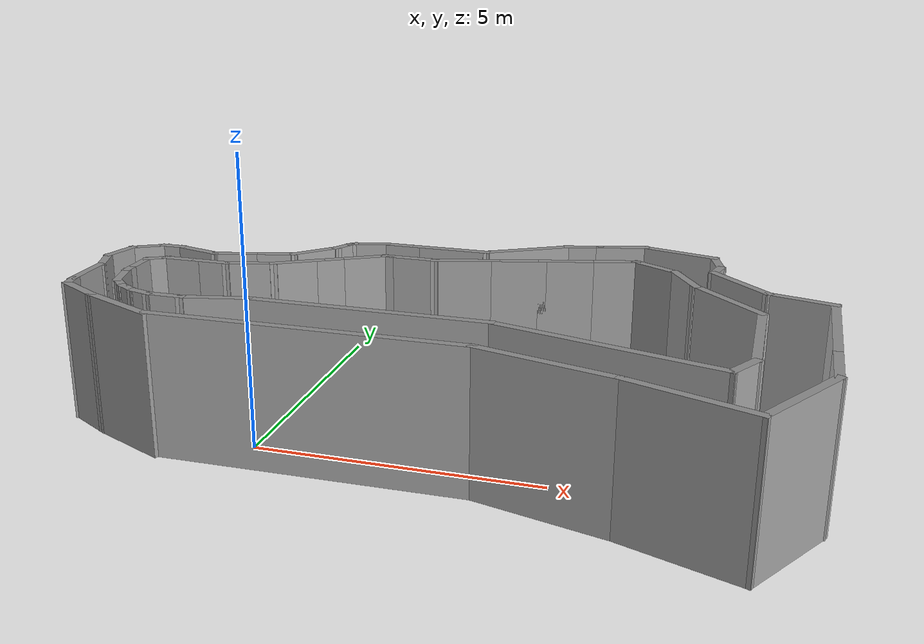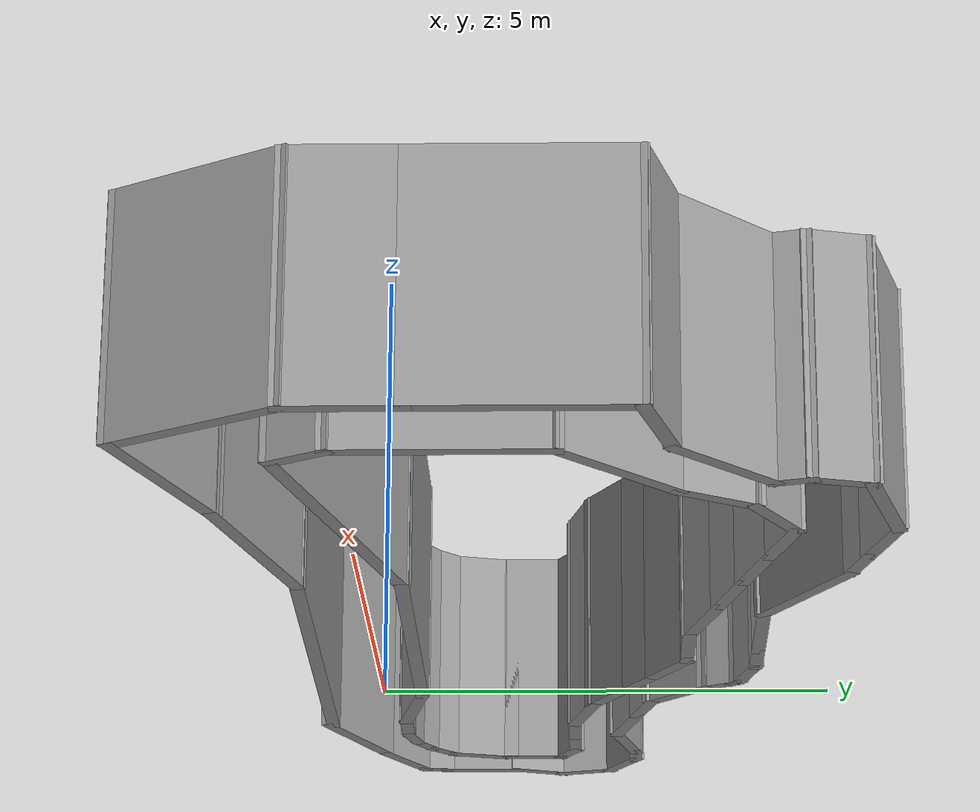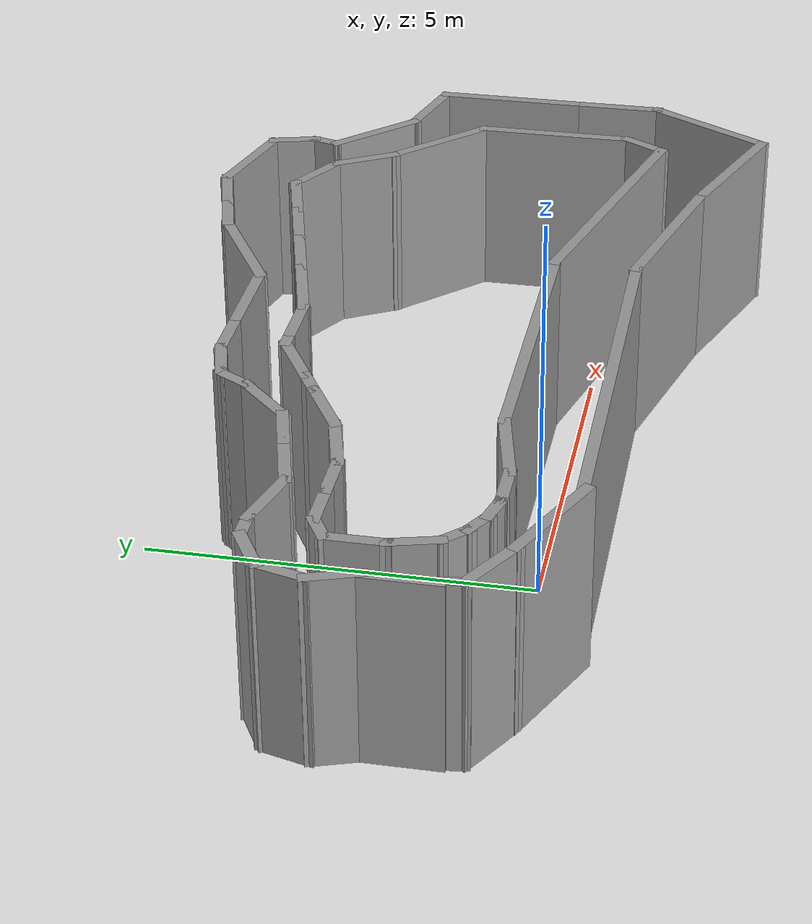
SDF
<?xml version='1.0'?>
<sdf version='1.7'>
  <model name='track_ver3'>
    <pose>2.6763 1.66621 0 0 -0 0</pose>
    <link name='Wall_10'>
      <collision name='Wall_10_Collision'>
        <geometry>
          <box>
            <size>2.25 0.15 2.5</size>
          </box>
        </geometry>
        <pose>0 0 1.25 0 -0 0</pose>
      </collision>
      <visual name='Wall_10_Visual'>
        <pose>0 0 1.25 0 -0 0</pose>
        <geometry>
          <box>
            <size>2.25 0.15 2.5</size>
          </box>
        </geometry>
        <material>
          <script>
            <uri>file://media/materials/scripts/gazebo.material</uri>
            <name>Gazebo/Grey</name>
          </script>
          <ambient>1 1 1 1</ambient>
        </material>
        <meta>
          <layer>0</layer>
        </meta>
      </visual>
      <pose>6.39373 0.103206 0 0 -0 1.5708</pose>
    </link>
    <link name='Wall_11'>
      <collision name='Wall_11_Collision'>
        <geometry>
          <box>
            <size>1.25 0.15 2.5</size>
          </box>
        </geometry>
        <pose>0 0 1.25 0 -0 0</pose>
      </collision>
      <visual name='Wall_11_Visual'>
        <pose>0 0 1.25 0 -0 0</pose>
        <geometry>
          <box>
            <size>1.25 0.15 2.5</size>
          </box>
        </geometry>
        <material>
          <script>
            <uri>file://media/materials/scripts/gazebo.material</uri>
            <name>Gazebo/Grey</name>
          </script>
          <ambient>1 1 1 1</ambient>
        </material>
        <meta>
          <layer>0</layer>
        </meta>
      </visual>
      <pose>5.86247 1.29556 0 0 -0 2.87979</pose>
    </link>
    <link name='Wall_12'>
      <collision name='Wall_12_Collision'>
        <geometry>
          <box>
            <size>1.5 0.15 2.5</size>
          </box>
        </geometry>
        <pose>0 0 1.25 0 -0 0</pose>
      </collision>
      <visual name='Wall_12_Visual'>
        <pose>0 0 1.25 0 -0 0</pose>
        <geometry>
          <box>
            <size>1.5 0.15 2.5</size>
          </box>
        </geometry>
        <material>
          <script>
            <uri>file://media/materials/scripts/gazebo.material</uri>
            <name>Gazebo/Grey</name>
          </script>
          <ambient>1 1 1 1</ambient>
        </material>
        <meta>
          <layer>0</layer>
        </meta>
      </visual>
      <pose>4.85392 1.9152 0 0 -0 2.35619</pose>
    </link>
    <link name='Wall_13'>
      <collision name='Wall_13_Collision'>
        <geometry>
          <box>
            <size>0.5 0.15 2.5</size>
          </box>
        </geometry>
        <pose>0 0 1.25 0 -0 0</pose>
      </collision>
      <visual name='Wall_13_Visual'>
        <pose>0 0 1.25 0 -0 0</pose>
        <geometry>
          <box>
            <size>0.5 0.15 2.5</size>
          </box>
        </geometry>
        <material>
          <script>
            <uri>file://media/materials/scripts/gazebo.material</uri>
            <name>Gazebo/Grey</name>
          </script>
          <ambient>1 1 1 1</ambient>
        </material>
        <meta>
          <layer>0</layer>
        </meta>
      </visual>
      <pose>4.42191 2.56154 0 0 -0 1.309</pose>
    </link>
    <link name='Wall_14'>
      <collision name='Wall_14_Collision'>
        <geometry>
          <box>
            <size>0.75 0.15 2.5</size>
          </box>
        </geometry>
        <pose>0 0 1.25 0 -0 0</pose>
      </collision>
      <visual name='Wall_14_Visual'>
        <pose>0 0 1.25 0 -0 0</pose>
        <geometry>
          <box>
            <size>0.75 0.15 2.5</size>
          </box>
        </geometry>
        <material>
          <script>
            <uri>file://media/materials/scripts/gazebo.material</uri>
            <name>Gazebo/Grey</name>
          </script>
          <ambient>1 1 1 1</ambient>
        </material>
        <meta>
          <layer>0</layer>
        </meta>
      </visual>
      <pose>4.38956 3.02035 0 0 -0 1.8326</pose>
    </link>
    <link name='Wall_15'>
      <collision name='Wall_15_Collision'>
        <geometry>
          <box>
            <size>1.5 0.15 2.5</size>
          </box>
        </geometry>
        <pose>0 0 1.25 0 -0 0</pose>
      </collision>
      <visual name='Wall_15_Visual'>
        <pose>0 0 1.25 0 -0 0</pose>
        <geometry>
          <box>
            <size>1.5 0.15 2.5</size>
          </box>
        </geometry>
        <material>
          <script>
            <uri>file://media/materials/scripts/gazebo.material</uri>
            <name>Gazebo/Grey</name>
          </script>
          <ambient>1 1 1 1</ambient>
        </material>
        <meta>
          <layer>0</layer>
        </meta>
      </visual>
      <pose>3.65991 3.48483 0 0 -0 2.87979</pose>
    </link>
    <link name='Wall_16'>
      <collision name='Wall_16_Collision'>
        <geometry>
          <box>
            <size>1 0.15 2.5</size>
          </box>
        </geometry>
        <pose>0 0 1.25 0 -0 0</pose>
      </collision>
      <visual name='Wall_16_Visual'>
        <pose>0 0 1.25 0 -0 0</pose>
        <geometry>
          <box>
            <size>1 0.15 2.5</size>
          </box>
        </geometry>
        <material>
          <script>
            <uri>file://media/materials/scripts/gazebo.material</uri>
            <name>Gazebo/Grey</name>
          </script>
          <ambient>1 1 1 1</ambient>
        </material>
        <meta>
          <layer>0</layer>
        </meta>
      </visual>
      <pose>2.5974 3.54954 0 0 -0 -2.87979</pose>
    </link>
    <link name='Wall_17'>
      <collision name='Wall_17_Collision'>
        <geometry>
          <box>
            <size>0.75 0.15 2.5</size>
          </box>
        </geometry>
        <pose>0 0 1.25 0 -0 0</pose>
      </collision>
      <visual name='Wall_17_Visual'>
        <pose>0 0 1.25 0 -0 0</pose>
        <geometry>
          <box>
            <size>0.75 0.15 2.5</size>
          </box>
        </geometry>
        <material>
          <script>
            <uri>file://media/materials/scripts/gazebo.material</uri>
            <name>Gazebo/Grey</name>
          </script>
          <ambient>1 1 1 1</ambient>
        </material>
        <meta>
          <layer>0</layer>
        </meta>
      </visual>
      <pose>1.8971 3.3619 0 0 -0 -2.87979</pose>
    </link>
    <link name='Wall_18'>
      <collision name='Wall_18_Collision'>
        <geometry>
          <box>
            <size>1.75 0.15 2.5</size>
          </box>
        </geometry>
        <pose>0 0 1.25 0 -0 0</pose>
      </collision>
      <visual name='Wall_18_Visual'>
        <pose>0 0 1.25 0 -0 0</pose>
        <geometry>
          <box>
            <size>1.75 0.15 2.5</size>
          </box>
        </geometry>
        <material>
          <script>
            <uri>file://media/materials/scripts/gazebo.material</uri>
            <name>Gazebo/Grey</name>
          </script>
          <ambient>1 1 1 1</ambient>
        </material>
        <meta>
          <layer>0</layer>
        </meta>
      </visual>
      <pose>0.914502 2.88425 0 0 -0 -2.61799</pose>
    </link>
    <link name='Wall_19'>
      <collision name='Wall_19_Collision'>
        <geometry>
          <box>
            <size>1.5 0.15 2.5</size>
          </box>
        </geometry>
        <pose>0 0 1.25 0 -0 0</pose>
      </collision>
      <visual name='Wall_19_Visual'>
        <pose>0 0 1.25 0 -0 0</pose>
        <geometry>
          <box>
            <size>1.5 0.15 2.5</size>
          </box>
        </geometry>
        <material>
          <script>
            <uri>file://media/materials/scripts/gazebo.material</uri>
            <name>Gazebo/Grey</name>
          </script>
          <ambient>1 1 1 1</ambient>
        </material>
        <meta>
          <layer>0</layer>
        </meta>
      </visual>
      <pose>-0.453318 2.48425 0 0 -0 3.14159</pose>
    </link>
    <link name='Wall_20'>
      <collision name='Wall_20_Collision'>
        <geometry>
          <box>
            <size>0.75 0.15 2.5</size>
          </box>
        </geometry>
        <pose>0 0 1.25 0 -0 0</pose>
      </collision>
      <visual name='Wall_20_Visual'>
        <pose>0 0 1.25 0 -0 0</pose>
        <geometry>
          <box>
            <size>0.75 0.15 2.5</size>
          </box>
        </geometry>
        <material>
          <script>
            <uri>file://media/materials/scripts/gazebo.material</uri>
            <name>Gazebo/Grey</name>
          </script>
          <ambient>1 1 1 1</ambient>
        </material>
        <meta>
          <layer>0</layer>
        </meta>
      </visual>
      <pose>-1.42832 2.48425 0 0 -0 3.14159</pose>
    </link>
    <link name='Wall_21'>
      <collision name='Wall_21_Collision'>
        <geometry>
          <box>
            <size>0.75 0.15 2.5</size>
          </box>
        </geometry>
        <pose>0 0 1.25 0 -0 0</pose>
      </collision>
      <visual name='Wall_21_Visual'>
        <pose>0 0 1.25 0 -0 0</pose>
        <geometry>
          <box>
            <size>0.75 0.15 2.5</size>
          </box>
        </geometry>
        <material>
          <script>
            <uri>file://media/materials/scripts/gazebo.material</uri>
            <name>Gazebo/Grey</name>
          </script>
          <ambient>1 1 1 1</ambient>
        </material>
        <meta>
          <layer>0</layer>
        </meta>
      </visual>
      <pose>-2.0181 2.4066 0 0 -0 -2.87979</pose>
    </link>
    <link name='Wall_22'>
      <collision name='Wall_22_Collision'>
        <geometry>
          <box>
            <size>0.25 0.15 2.5</size>
          </box>
        </geometry>
        <pose>0 0 1.25 0 -0 0</pose>
      </collision>
      <visual name='Wall_22_Visual'>
        <pose>0 0 1.25 0 -0 0</pose>
        <geometry>
          <box>
            <size>0.25 0.15 2.5</size>
          </box>
        </geometry>
        <material>
          <script>
            <uri>file://media/materials/scripts/gazebo.material</uri>
            <name>Gazebo/Grey</name>
          </script>
          <ambient>1 1 1 1</ambient>
        </material>
        <meta>
          <layer>0</layer>
        </meta>
      </visual>
      <pose>-2.34323 2.2936 0 0 -0 -2.35619</pose>
    </link>
    <link name='Wall_23'>
      <collision name='Wall_23_Collision'>
        <geometry>
          <box>
            <size>0.5 0.15 2.5</size>
          </box>
        </geometry>
        <pose>0 0 1.25 0 -0 0</pose>
      </collision>
      <visual name='Wall_23_Visual'>
        <pose>0 0 1.25 0 -0 0</pose>
        <geometry>
          <box>
            <size>0.5 0.15 2.5</size>
          </box>
        </geometry>
        <material>
          <script>
            <uri>file://media/materials/scripts/gazebo.material</uri>
            <name>Gazebo/Grey</name>
          </script>
          <ambient>1 1 1 1</ambient>
        </material>
        <meta>
          <layer>0</layer>
        </meta>
      </visual>
      <pose>-2.46608 2.10669 0 0 -0 -2.0944</pose>
    </link>
    <link name='Wall_24'>
      <collision name='Wall_24_Collision'>
        <geometry>
          <box>
            <size>1 0.15 2.5</size>
          </box>
        </geometry>
        <pose>0 0 1.25 0 -0 0</pose>
      </collision>
      <visual name='Wall_24_Visual'>
        <pose>0 0 1.25 0 -0 0</pose>
        <geometry>
          <box>
            <size>1 0.15 2.5</size>
          </box>
        </geometry>
        <material>
          <script>
            <uri>file://media/materials/scripts/gazebo.material</uri>
            <name>Gazebo/Grey</name>
          </script>
          <ambient>1 1 1 1</ambient>
        </material>
        <meta>
          <layer>0</layer>
        </meta>
      </visual>
      <pose>-2.85411 1.65462 0 0 -0 -2.35619</pose>
    </link>
    <link name='Wall_25'>
      <collision name='Wall_25_Collision'>
        <geometry>
          <box>
            <size>0.75 0.15 2.5</size>
          </box>
        </geometry>
        <pose>0 0 1.25 0 -0 0</pose>
      </collision>
      <visual name='Wall_25_Visual'>
        <pose>0 0 1.25 0 -0 0</pose>
        <geometry>
          <box>
            <size>0.75 0.15 2.5</size>
          </box>
        </geometry>
        <material>
          <script>
            <uri>file://media/materials/scripts/gazebo.material</uri>
            <name>Gazebo/Grey</name>
          </script>
          <ambient>1 1 1 1</ambient>
        </material>
        <meta>
          <layer>0</layer>
        </meta>
      </visual>
      <pose>-3.4444 1.27645 0 0 -0 -2.87979</pose>
    </link>
    <link name='Wall_26'>
      <collision name='Wall_26_Collision'>
        <geometry>
          <box>
            <size>1 0.15 2.5</size>
          </box>
        </geometry>
        <pose>0 0 1.25 0 -0 0</pose>
      </collision>
      <visual name='Wall_26_Visual'>
        <pose>0 0 1.25 0 -0 0</pose>
        <geometry>
          <box>
            <size>1 0.15 2.5</size>
          </box>
        </geometry>
        <material>
          <script>
            <uri>file://media/materials/scripts/gazebo.material</uri>
            <name>Gazebo/Grey</name>
          </script>
          <ambient>1 1 1 1</ambient>
        </material>
        <meta>
          <layer>0</layer>
        </meta>
      </visual>
      <pose>-4.1447 1.08881 0 0 -0 -2.87979</pose>
    </link>
    <link name='Wall_27'>
      <collision name='Wall_27_Collision'>
        <geometry>
          <box>
            <size>1 0.15 2.5</size>
          </box>
        </geometry>
        <pose>0 0 1.25 0 -0 0</pose>
      </collision>
      <visual name='Wall_27_Visual'>
        <pose>0 0 1.25 0 -0 0</pose>
        <geometry>
          <box>
            <size>1 0.15 2.5</size>
          </box>
        </geometry>
        <material>
          <script>
            <uri>file://media/materials/scripts/gazebo.material</uri>
            <name>Gazebo/Grey</name>
          </script>
          <ambient>1 1 1 1</ambient>
        </material>
        <meta>
          <layer>0</layer>
        </meta>
      </visual>
      <pose>-4.96574 1.08881 0 0 -0 2.87979</pose>
    </link>
    <link name='Wall_28'>
      <collision name='Wall_28_Collision'>
        <geometry>
          <box>
            <size>0.5 0.15 2.5</size>
          </box>
        </geometry>
        <pose>0 0 1.25 0 -0 0</pose>
      </collision>
      <visual name='Wall_28_Visual'>
        <pose>0 0 1.25 0 -0 0</pose>
        <geometry>
          <box>
            <size>0.5 0.15 2.5</size>
          </box>
        </geometry>
        <material>
          <script>
            <uri>file://media/materials/scripts/gazebo.material</uri>
            <name>Gazebo/Grey</name>
          </script>
          <ambient>1 1 1 1</ambient>
        </material>
        <meta>
          <layer>0</layer>
        </meta>
      </visual>
      <pose>-5.55125 1.19881 0 0 -0 3.14159</pose>
    </link>
    <link name='Wall_29'>
      <collision name='Wall_29_Collision'>
        <geometry>
          <box>
            <size>0.75 0.15 2.5</size>
          </box>
        </geometry>
        <pose>0 0 1.25 0 -0 0</pose>
      </collision>
      <visual name='Wall_29_Visual'>
        <pose>0 0 1.25 0 -0 0</pose>
        <geometry>
          <box>
            <size>0.75 0.15 2.5</size>
          </box>
        </geometry>
        <material>
          <script>
            <uri>file://media/materials/scripts/gazebo.material</uri>
            <name>Gazebo/Grey</name>
          </script>
          <ambient>1 1 1 1</ambient>
        </material>
        <meta>
          <layer>0</layer>
        </meta>
      </visual>
      <pose>-5.98606 1.04881 0 0 -0 -2.61799</pose>
    </link>
    <link name='Wall_3'>
      <collision name='Wall_3_Collision'>
        <geometry>
          <box>
            <size>1 0.15 2.5</size>
          </box>
        </geometry>
        <pose>0 0 1.25 0 -0 0</pose>
      </collision>
      <visual name='Wall_3_Visual'>
        <pose>0 0 1.25 0 -0 0</pose>
        <geometry>
          <box>
            <size>1 0.15 2.5</size>
          </box>
        </geometry>
        <material>
          <script>
            <uri>file://media/materials/scripts/gazebo.material</uri>
            <name>Gazebo/Grey</name>
          </script>
          <ambient>1 1 1 1</ambient>
        </material>
        <meta>
          <layer>0</layer>
        </meta>
      </visual>
      <pose>-5.79917 -1.58482 0 0 -0 -0.523599</pose>
    </link>
    <link name='Wall_30'>
      <collision name='Wall_30_Collision'>
        <geometry>
          <box>
            <size>0.75 0.15 2.5</size>
          </box>
        </geometry>
        <pose>0 0 1.25 0 -0 0</pose>
      </collision>
      <visual name='Wall_30_Visual'>
        <pose>0 0 1.25 0 -0 0</pose>
        <geometry>
          <box>
            <size>0.75 0.15 2.5</size>
          </box>
        </geometry>
        <material>
          <script>
            <uri>file://media/materials/scripts/gazebo.material</uri>
            <name>Gazebo/Grey</name>
          </script>
          <ambient>1 1 1 1</ambient>
        </material>
        <meta>
          <layer>0</layer>
        </meta>
      </visual>
      <pose>-6.32352 0.609028 0 0 -0 -1.8326</pose>
    </link>
    <link name='Wall_31'>
      <collision name='Wall_31_Collision'>
        <geometry>
          <box>
            <size>0.761574 0.15 2.5</size>
          </box>
        </geometry>
        <pose>0 0 1.25 0 -0 0</pose>
      </collision>
      <visual name='Wall_31_Visual'>
        <pose>0 0 1.25 0 -0 0</pose>
        <geometry>
          <box>
            <size>0.761574 0.15 2.5</size>
          </box>
        </geometry>
        <material>
          <script>
            <uri>file://media/materials/scripts/gazebo.material</uri>
            <name>Gazebo/Grey</name>
          </script>
          <ambient>1 1 1 1</ambient>
        </material>
        <meta>
          <layer>0</layer>
        </meta>
      </visual>
      <pose>-6.30351 0.029473 0 0 -0 -1.24578</pose>
    </link>
    <link name='Wall_32'>
      <collision name='Wall_32_Collision'>
        <geometry>
          <box>
            <size>1 0.15 2.5</size>
          </box>
        </geometry>
        <pose>0 0 1.25 0 -0 0</pose>
      </collision>
      <visual name='Wall_32_Visual'>
        <pose>0 0 1.25 0 -0 0</pose>
        <geometry>
          <box>
            <size>1 0.15 2.5</size>
          </box>
        </geometry>
        <material>
          <script>
            <uri>file://media/materials/scripts/gazebo.material</uri>
            <name>Gazebo/Grey</name>
          </script>
          <ambient>1 1 1 1</ambient>
        </material>
        <meta>
          <layer>0</layer>
        </meta>
      </visual>
      <pose>-6.22587 -0.685305 0 0 -0 -1.5708</pose>
    </link>
    <link name='Wall_33'>
      <collision name='Wall_33_Collision'>
        <geometry>
          <box>
            <size>0.414849 0.15 2.5</size>
          </box>
        </geometry>
        <pose>0 0 1.25 0 -0 0</pose>
      </collision>
      <visual name='Wall_33_Visual'>
        <pose>0 0 1.25 0 -0 0</pose>
        <geometry>
          <box>
            <size>0.414849 0.15 2.5</size>
          </box>
        </geometry>
        <material>
          <script>
            <uri>file://media/materials/scripts/gazebo.material</uri>
            <name>Gazebo/Grey</name>
          </script>
          <ambient>1 1 1 1</ambient>
        </material>
        <meta>
          <layer>0</layer>
        </meta>
      </visual>
      <pose>-6.18655 -1.24131 0 0 -0 -1.42438</pose>
    </link>
    <link name='Wall_37'>
      <collision name='Wall_37_Collision'>
        <geometry>
          <box>
            <size>4.25 0.15 2.5</size>
          </box>
        </geometry>
        <pose>0 0 1.25 0 -0 0</pose>
      </collision>
      <visual name='Wall_37_Visual'>
        <pose>0 0 1.25 0 -0 0</pose>
        <geometry>
          <box>
            <size>4.25 0.15 2.5</size>
          </box>
        </geometry>
        <material>
          <script>
            <uri>file://media/materials/scripts/gazebo.material</uri>
            <name>Gazebo/Grey</name>
          </script>
          <ambient>1 1 1 1</ambient>
        </material>
        <meta>
          <layer>0</layer>
        </meta>
      </visual>
      <pose>-0.79223 -1.24953 0 0 -0 0</pose>
    </link>
    <link name='Wall_38'>
      <collision name='Wall_38_Collision'>
        <geometry>
          <box>
            <size>4 0.15 2.5</size>
          </box>
        </geometry>
        <pose>0 0 1.25 0 -0 0</pose>
      </collision>
      <visual name='Wall_38_Visual'>
        <pose>0 0 1.25 0 -0 0</pose>
        <geometry>
          <box>
            <size>4 0.15 2.5</size>
          </box>
        </geometry>
        <material>
          <script>
            <uri>file://media/materials/scripts/gazebo.material</uri>
            <name>Gazebo/Grey</name>
          </script>
          <ambient>1 1 1 1</ambient>
        </material>
        <meta>
          <layer>0</layer>
        </meta>
      </visual>
      <pose>3.11718 -1.74776 0 0 -0 -0.261799</pose>
    </link>
    <link name='Wall_39'>
      <collision name='Wall_39_Collision'>
        <geometry>
          <box>
            <size>0.75 0.15 2.5</size>
          </box>
        </geometry>
        <pose>0 0 1.25 0 -0 0</pose>
      </collision>
      <visual name='Wall_39_Visual'>
        <pose>0 0 1.25 0 -0 0</pose>
        <geometry>
          <box>
            <size>0.75 0.15 2.5</size>
          </box>
        </geometry>
        <material>
          <script>
            <uri>file://media/materials/scripts/gazebo.material</uri>
            <name>Gazebo/Grey</name>
          </script>
          <ambient>1 1 1 1</ambient>
        </material>
        <meta>
          <layer>0</layer>
        </meta>
      </visual>
      <pose>5.12658 -1.98618 0 0 -0 1.0472</pose>
    </link>
    <link name='Wall_4'>
      <collision name='Wall_4_Collision'>
        <geometry>
          <box>
            <size>1.60005 0.15 2.5</size>
          </box>
        </geometry>
        <pose>0 0 1.25 0 -0 0</pose>
      </collision>
      <visual name='Wall_4_Visual'>
        <pose>0 0 1.25 0 -0 0</pose>
        <geometry>
          <box>
            <size>1.60005 0.15 2.5</size>
          </box>
        </geometry>
        <material>
          <script>
            <uri>file://media/materials/scripts/gazebo.material</uri>
            <name>Gazebo/Grey</name>
          </script>
          <ambient>1 1 1 1</ambient>
        </material>
        <meta>
          <layer>0</layer>
        </meta>
      </visual>
      <pose>-4.7713 -2.09784 0 0 -0 -0.427394</pose>
    </link>
    <link name='Wall_40'>
      <collision name='Wall_40_Collision'>
        <geometry>
          <box>
            <size>2.25 0.15 2.5</size>
          </box>
        </geometry>
        <pose>0 0 1.25 0 -0 0</pose>
      </collision>
      <visual name='Wall_40_Visual'>
        <pose>0 0 1.25 0 -0 0</pose>
        <geometry>
          <box>
            <size>2.25 0.15 2.5</size>
          </box>
        </geometry>
        <material>
          <script>
            <uri>file://media/materials/scripts/gazebo.material</uri>
            <name>Gazebo/Grey</name>
          </script>
          <ambient>1 1 1 1</ambient>
        </material>
        <meta>
          <layer>0</layer>
        </meta>
      </visual>
      <pose>5.27658 -0.676369 0 0 -0 1.5708</pose>
    </link>
    <link name='Wall_41'>
      <collision name='Wall_41_Collision'>
        <geometry>
          <box>
            <size>1.75 0.15 2.5</size>
          </box>
        </geometry>
        <pose>0 0 1.25 0 -0 0</pose>
      </collision>
      <visual name='Wall_41_Visual'>
        <pose>0 0 1.25 0 -0 0</pose>
        <geometry>
          <box>
            <size>1.75 0.15 2.5</size>
          </box>
        </geometry>
        <material>
          <script>
            <uri>file://media/materials/scripts/gazebo.material</uri>
            <name>Gazebo/Grey</name>
          </script>
          <ambient>1 1 1 1</ambient>
        </material>
        <meta>
          <layer>0</layer>
        </meta>
      </visual>
      <pose>4.7109 0.939316 0 0 -0 2.35619</pose>
    </link>
    <link name='Wall_42'>
      <collision name='Wall_42_Collision'>
        <geometry>
          <box>
            <size>1 0.15 2.5</size>
          </box>
        </geometry>
        <pose>0 0 1.25 0 -0 0</pose>
      </collision>
      <visual name='Wall_42_Visual'>
        <pose>0 0 1.25 0 -0 0</pose>
        <geometry>
          <box>
            <size>1 0.15 2.5</size>
          </box>
        </geometry>
        <material>
          <script>
            <uri>file://media/materials/scripts/gazebo.material</uri>
            <name>Gazebo/Grey</name>
          </script>
          <ambient>1 1 1 1</ambient>
        </material>
        <meta>
          <layer>0</layer>
        </meta>
      </visual>
      <pose>3.93271 1.87306 0 0 -0 2.0944</pose>
    </link>
    <link name='Wall_43'>
      <collision name='Wall_43_Collision'>
        <geometry>
          <box>
            <size>1 0.15 2.5</size>
          </box>
        </geometry>
        <pose>0 0 1.25 0 -0 0</pose>
      </collision>
      <visual name='Wall_43_Visual'>
        <pose>0 0 1.25 0 -0 0</pose>
        <geometry>
          <box>
            <size>1 0.15 2.5</size>
          </box>
        </geometry>
        <material>
          <script>
            <uri>file://media/materials/scripts/gazebo.material</uri>
            <name>Gazebo/Grey</name>
          </script>
          <ambient>1 1 1 1</ambient>
        </material>
        <meta>
          <layer>0</layer>
        </meta>
      </visual>
      <pose>3.35215 2.45362 0 0 -0 2.61799</pose>
    </link>
    <link name='Wall_44'>
      <collision name='Wall_44_Collision'>
        <geometry>
          <box>
            <size>1 0.15 2.5</size>
          </box>
        </geometry>
        <pose>0 0 1.25 0 -0 0</pose>
      </collision>
      <visual name='Wall_44_Visual'>
        <pose>0 0 1.25 0 -0 0</pose>
        <geometry>
          <box>
            <size>1 0.15 2.5</size>
          </box>
        </geometry>
        <material>
          <script>
            <uri>file://media/materials/scripts/gazebo.material</uri>
            <name>Gazebo/Grey</name>
          </script>
          <ambient>1 1 1 1</ambient>
        </material>
        <meta>
          <layer>0</layer>
        </meta>
      </visual>
      <pose>2.57357 2.55613 0 0 -0 -2.87979</pose>
    </link>
    <link name='Wall_45'>
      <collision name='Wall_45_Collision'>
        <geometry>
          <box>
            <size>1 0.15 2.5</size>
          </box>
        </geometry>
        <pose>0 0 1.25 0 -0 0</pose>
      </collision>
      <visual name='Wall_45_Visual'>
        <pose>0 0 1.25 0 -0 0</pose>
        <geometry>
          <box>
            <size>1 0.15 2.5</size>
          </box>
        </geometry>
        <material>
          <script>
            <uri>file://media/materials/scripts/gazebo.material</uri>
            <name>Gazebo/Grey</name>
          </script>
          <ambient>1 1 1 1</ambient>
        </material>
        <meta>
          <layer>0</layer>
        </meta>
      </visual>
      <pose>1.75254 2.33613 0 0 -0 -2.87979</pose>
    </link>
    <link name='Wall_46'>
      <collision name='Wall_46_Collision'>
        <geometry>
          <box>
            <size>1 0.15 2.5</size>
          </box>
        </geometry>
        <pose>0 0 1.25 0 -0 0</pose>
      </collision>
      <visual name='Wall_46_Visual'>
        <pose>0 0 1.25 0 -0 0</pose>
        <geometry>
          <box>
            <size>1 0.15 2.5</size>
          </box>
        </geometry>
        <material>
          <script>
            <uri>file://media/materials/scripts/gazebo.material</uri>
            <name>Gazebo/Grey</name>
          </script>
          <ambient>1 1 1 1</ambient>
        </material>
        <meta>
          <layer>0</layer>
        </meta>
      </visual>
      <pose>0.931499 2.11613 0 0 -0 -2.87979</pose>
    </link>
    <link name='Wall_47'>
      <collision name='Wall_47_Collision'>
        <geometry>
          <box>
            <size>1.25 0.15 2.5</size>
          </box>
        </geometry>
        <pose>0 0 1.25 0 -0 0</pose>
      </collision>
      <visual name='Wall_47_Visual'>
        <pose>0 0 1.25 0 -0 0</pose>
        <geometry>
          <box>
            <size>1.25 0.15 2.5</size>
          </box>
        </geometry>
        <material>
          <script>
            <uri>file://media/materials/scripts/gazebo.material</uri>
            <name>Gazebo/Grey</name>
          </script>
          <ambient>1 1 1 1</ambient>
        </material>
        <meta>
          <layer>0</layer>
        </meta>
      </visual>
      <pose>-0.010279 1.86378 0 0 -0 -2.87979</pose>
    </link>
    <link name='Wall_48'>
      <collision name='Wall_48_Collision'>
        <geometry>
          <box>
            <size>1 0.15 2.5</size>
          </box>
        </geometry>
        <pose>0 0 1.25 0 -0 0</pose>
      </collision>
      <visual name='Wall_48_Visual'>
        <pose>0 0 1.25 0 -0 0</pose>
        <geometry>
          <box>
            <size>1 0.15 2.5</size>
          </box>
        </geometry>
        <material>
          <script>
            <uri>file://media/materials/scripts/gazebo.material</uri>
            <name>Gazebo/Grey</name>
          </script>
          <ambient>1 1 1 1</ambient>
        </material>
        <meta>
          <layer>0</layer>
        </meta>
      </visual>
      <pose>-0.966538 1.72143 0 0 -0 3.14159</pose>
    </link>
    <link name='Wall_49'>
      <collision name='Wall_49_Collision'>
        <geometry>
          <box>
            <size>0.25 0.15 2.5</size>
          </box>
        </geometry>
        <pose>0 0 1.25 0 -0 0</pose>
      </collision>
      <visual name='Wall_49_Visual'>
        <pose>0 0 1.25 0 -0 0</pose>
        <geometry>
          <box>
            <size>0.25 0.15 2.5</size>
          </box>
        </geometry>
        <material>
          <script>
            <uri>file://media/materials/scripts/gazebo.material</uri>
            <name>Gazebo/Grey</name>
          </script>
          <ambient>1 1 1 1</ambient>
        </material>
        <meta>
          <layer>0</layer>
        </meta>
      </visual>
      <pose>-1.44154 1.72143 0 0 -0 3.14159</pose>
    </link>
    <link name='Wall_5'>
      <collision name='Wall_5_Collision'>
        <geometry>
          <box>
            <size>5.52515 0.15 2.5</size>
          </box>
        </geometry>
        <pose>0 0 1.25 0 -0 0</pose>
      </collision>
      <visual name='Wall_5_Visual'>
        <pose>0 0 1.25 0 -0 0</pose>
        <geometry>
          <box>
            <size>5.52515 0.15 2.5</size>
          </box>
        </geometry>
        <material>
          <script>
            <uri>file://media/materials/scripts/gazebo.material</uri>
            <name>Gazebo/Grey</name>
          </script>
          <ambient>1 1 1 1</ambient>
        </material>
        <meta>
          <layer>0</layer>
        </meta>
      </visual>
      <pose>-1.42397 -2.34086 0 0 -0 0.006516</pose>
    </link>
    <link name='Wall_50'>
      <collision name='Wall_50_Collision'>
        <geometry>
          <box>
            <size>1 0.15 2.5</size>
          </box>
        </geometry>
        <pose>0 0 1.25 0 -0 0</pose>
      </collision>
      <visual name='Wall_50_Visual'>
        <pose>0 0 1.25 0 -0 0</pose>
        <geometry>
          <box>
            <size>1 0.15 2.5</size>
          </box>
        </geometry>
        <material>
          <script>
            <uri>file://media/materials/scripts/gazebo.material</uri>
            <name>Gazebo/Grey</name>
          </script>
          <ambient>1 1 1 1</ambient>
        </material>
        <meta>
          <layer>0</layer>
        </meta>
      </visual>
      <pose>-1.8596 1.50893 0 0 -0 -2.61799</pose>
    </link>
    <link name='Wall_51'>
      <collision name='Wall_51_Collision'>
        <geometry>
          <box>
            <size>0.5 0.15 2.5</size>
          </box>
        </geometry>
        <pose>0 0 1.25 0 -0 0</pose>
      </collision>
      <visual name='Wall_51_Visual'>
        <pose>0 0 1.25 0 -0 0</pose>
        <geometry>
          <box>
            <size>0.5 0.15 2.5</size>
          </box>
        </geometry>
        <material>
          <script>
            <uri>file://media/materials/scripts/gazebo.material</uri>
            <name>Gazebo/Grey</name>
          </script>
          <ambient>1 1 1 1</ambient>
        </material>
        <meta>
          <layer>0</layer>
        </meta>
      </visual>
      <pose>-2.37921 1.20893 0 0 -0 -2.61799</pose>
    </link>
    <link name='Wall_52'>
      <collision name='Wall_52_Collision'>
        <geometry>
          <box>
            <size>1 0.15 2.5</size>
          </box>
        </geometry>
        <pose>0 0 1.25 0 -0 0</pose>
      </collision>
      <visual name='Wall_52_Visual'>
        <pose>0 0 1.25 0 -0 0</pose>
        <geometry>
          <box>
            <size>1 0.15 2.5</size>
          </box>
        </geometry>
        <material>
          <script>
            <uri>file://media/materials/scripts/gazebo.material</uri>
            <name>Gazebo/Grey</name>
          </script>
          <ambient>1 1 1 1</ambient>
        </material>
        <meta>
          <layer>0</layer>
        </meta>
      </visual>
      <pose>-2.89883 0.908934 0 0 -0 -2.61799</pose>
    </link>
    <link name='Wall_53'>
      <collision name='Wall_53_Collision'>
        <geometry>
          <box>
            <size>1 0.15 2.5</size>
          </box>
        </geometry>
        <pose>0 0 1.25 0 -0 0</pose>
      </collision>
      <visual name='Wall_53_Visual'>
        <pose>0 0 1.25 0 -0 0</pose>
        <geometry>
          <box>
            <size>1 0.15 2.5</size>
          </box>
        </geometry>
        <material>
          <script>
            <uri>file://media/materials/scripts/gazebo.material</uri>
            <name>Gazebo/Grey</name>
          </script>
          <ambient>1 1 1 1</ambient>
        </material>
        <meta>
          <layer>0</layer>
        </meta>
      </visual>
      <pose>-3.67741 0.586436 0 0 -0 -2.87979</pose>
    </link>
    <link name='Wall_54'>
      <collision name='Wall_54_Collision'>
        <geometry>
          <box>
            <size>0.75 0.15 2.5</size>
          </box>
        </geometry>
        <pose>0 0 1.25 0 -0 0</pose>
      </collision>
      <visual name='Wall_54_Visual'>
        <pose>0 0 1.25 0 -0 0</pose>
        <geometry>
          <box>
            <size>0.75 0.15 2.5</size>
          </box>
        </geometry>
        <material>
          <script>
            <uri>file://media/materials/scripts/gazebo.material</uri>
            <name>Gazebo/Grey</name>
          </script>
          <ambient>1 1 1 1</ambient>
        </material>
        <meta>
          <layer>0</layer>
        </meta>
      </visual>
      <pose>-4.38793 0.476437 0 0 -0 3.14159</pose>
    </link>
    <link name='Wall_55'>
      <collision name='Wall_55_Collision'>
        <geometry>
          <box>
            <size>0.75 0.15 2.5</size>
          </box>
        </geometry>
        <pose>0 0 1.25 0 -0 0</pose>
      </collision>
      <visual name='Wall_55_Visual'>
        <pose>0 0 1.25 0 -0 0</pose>
        <geometry>
          <box>
            <size>0.75 0.15 2.5</size>
          </box>
        </geometry>
        <material>
          <script>
            <uri>file://media/materials/scripts/gazebo.material</uri>
            <name>Gazebo/Grey</name>
          </script>
          <ambient>1 1 1 1</ambient>
        </material>
        <meta>
          <layer>0</layer>
        </meta>
      </visual>
      <pose>-4.98793 0.476437 0 0 -0 3.14159</pose>
    </link>
    <link name='Wall_56'>
      <collision name='Wall_56_Collision'>
        <geometry>
          <box>
            <size>0.5 0.15 2.5</size>
          </box>
        </geometry>
        <pose>0 0 1.25 0 -0 0</pose>
      </collision>
      <visual name='Wall_56_Visual'>
        <pose>0 0 1.25 0 -0 0</pose>
        <geometry>
          <box>
            <size>0.5 0.15 2.5</size>
          </box>
        </geometry>
        <material>
          <script>
            <uri>file://media/materials/scripts/gazebo.material</uri>
            <name>Gazebo/Grey</name>
          </script>
          <ambient>1 1 1 1</ambient>
        </material>
        <meta>
          <layer>0</layer>
        </meta>
      </visual>
      <pose>-5.43948 0.388938 0 0 -0 -2.61799</pose>
    </link>
    <link name='Wall_57'>
      <collision name='Wall_57_Collision'>
        <geometry>
          <box>
            <size>0.75 0.15 2.5</size>
          </box>
        </geometry>
        <pose>0 0 1.25 0 -0 0</pose>
      </collision>
      <visual name='Wall_57_Visual'>
        <pose>0 0 1.25 0 -0 0</pose>
        <geometry>
          <box>
            <size>0.75 0.15 2.5</size>
          </box>
        </geometry>
        <material>
          <script>
            <uri>file://media/materials/scripts/gazebo.material</uri>
            <name>Gazebo/Grey</name>
          </script>
          <ambient>1 1 1 1</ambient>
        </material>
        <meta>
          <layer>0</layer>
        </meta>
      </visual>
      <pose>-5.59104 0.001438 0 0 -0 -1.5708</pose>
    </link>
    <link name='Wall_58'>
      <collision name='Wall_58_Collision'>
        <geometry>
          <box>
            <size>0.25 0.15 2.5</size>
          </box>
        </geometry>
        <pose>0 0 1.25 0 -0 0</pose>
      </collision>
      <visual name='Wall_58_Visual'>
        <pose>0 0 1.25 0 -0 0</pose>
        <geometry>
          <box>
            <size>0.25 0.15 2.5</size>
          </box>
        </geometry>
        <material>
          <script>
            <uri>file://media/materials/scripts/gazebo.material</uri>
            <name>Gazebo/Grey</name>
          </script>
          <ambient>1 1 1 1</ambient>
        </material>
        <meta>
          <layer>0</layer>
        </meta>
      </visual>
      <pose>-5.59104 -0.348562 0 0 -0 -1.5708</pose>
    </link>
    <link name='Wall_59'>
      <collision name='Wall_59_Collision'>
        <geometry>
          <box>
            <size>0.75 0.15 2.5</size>
          </box>
        </geometry>
        <pose>0 0 1.25 0 -0 0</pose>
      </collision>
      <visual name='Wall_59_Visual'>
        <pose>0 0 1.25 0 -0 0</pose>
        <geometry>
          <box>
            <size>0.75 0.15 2.5</size>
          </box>
        </geometry>
        <material>
          <script>
            <uri>file://media/materials/scripts/gazebo.material</uri>
            <name>Gazebo/Grey</name>
          </script>
          <ambient>1 1 1 1</ambient>
        </material>
        <meta>
          <layer>0</layer>
        </meta>
      </visual>
      <pose>-5.51339 -0.68834 0 0 -0 -1.309</pose>
    </link>
    <link name='Wall_6'>
      <collision name='Wall_6_Collision'>
        <geometry>
          <box>
            <size>2.5 0.15 2.5</size>
          </box>
        </geometry>
        <pose>0 0 1.25 0 -0 0</pose>
      </collision>
      <visual name='Wall_6_Visual'>
        <pose>0 0 1.25 0 -0 0</pose>
        <geometry>
          <box>
            <size>2.5 0.15 2.5</size>
          </box>
        </geometry>
        <material>
          <script>
            <uri>file://media/materials/scripts/gazebo.material</uri>
            <name>Gazebo/Grey</name>
          </script>
          <ambient>1 1 1 1</ambient>
        </material>
        <meta>
          <layer>0</layer>
        </meta>
      </visual>
      <pose>2.39851 -2.62746 0 0 -0 -0.261799</pose>
    </link>
    <link name='Wall_60'>
      <collision name='Wall_60_Collision'>
        <geometry>
          <box>
            <size>0.5 0.15 2.5</size>
          </box>
        </geometry>
        <pose>0 0 1.25 0 -0 0</pose>
      </collision>
      <visual name='Wall_60_Visual'>
        <pose>0 0 1.25 0 -0 0</pose>
        <geometry>
          <box>
            <size>0.5 0.15 2.5</size>
          </box>
        </geometry>
        <material>
          <script>
            <uri>file://media/materials/scripts/gazebo.material</uri>
            <name>Gazebo/Grey</name>
          </script>
          <ambient>1 1 1 1</ambient>
        </material>
        <meta>
          <layer>0</layer>
        </meta>
      </visual>
      <pose>-5.312 -1.10186 0 0 -0 -0.785398</pose>
    </link>
    <link name='Wall_61'>
      <collision name='Wall_61_Collision'>
        <geometry>
          <box>
            <size>0.5 0.15 2.5</size>
          </box>
        </geometry>
        <pose>0 0 1.25 0 -0 0</pose>
      </collision>
      <visual name='Wall_61_Visual'>
        <pose>0 0 1.25 0 -0 0</pose>
        <geometry>
          <box>
            <size>0.5 0.15 2.5</size>
          </box>
        </geometry>
        <material>
          <script>
            <uri>file://media/materials/scripts/gazebo.material</uri>
            <name>Gazebo/Grey</name>
          </script>
          <ambient>1 1 1 1</ambient>
        </material>
        <meta>
          <layer>0</layer>
        </meta>
      </visual>
      <pose>-5.0367 -1.3131 0 0 -0 -0.523599</pose>
    </link>
    <link name='Wall_62'>
      <collision name='Wall_62_Collision'>
        <geometry>
          <box>
            <size>0.5 0.15 2.5</size>
          </box>
        </geometry>
        <pose>0 0 1.25 0 -0 0</pose>
      </collision>
      <visual name='Wall_62_Visual'>
        <pose>0 0 1.25 0 -0 0</pose>
        <geometry>
          <box>
            <size>0.5 0.15 2.5</size>
          </box>
        </geometry>
        <material>
          <script>
            <uri>file://media/materials/scripts/gazebo.material</uri>
            <name>Gazebo/Grey</name>
          </script>
          <ambient>1 1 1 1</ambient>
        </material>
        <meta>
          <layer>0</layer>
        </meta>
      </visual>
      <pose>-4.71611 -1.4459 0 0 -0 -0.261799</pose>
    </link>
    <link name='Wall_63'>
      <collision name='Wall_63_Collision'>
        <geometry>
          <box>
            <size>0.75 0.15 2.5</size>
          </box>
        </geometry>
        <pose>0 0 1.25 0 -0 0</pose>
      </collision>
      <visual name='Wall_63_Visual'>
        <pose>0 0 1.25 0 -0 0</pose>
        <geometry>
          <box>
            <size>0.75 0.15 2.5</size>
          </box>
        </geometry>
        <material>
          <script>
            <uri>file://media/materials/scripts/gazebo.material</uri>
            <name>Gazebo/Grey</name>
          </script>
          <ambient>1 1 1 1</ambient>
        </material>
        <meta>
          <layer>0</layer>
        </meta>
      </visual>
      <pose>-4.24707 -1.49119 0 0 -0 0</pose>
    </link>
    <link name='Wall_64'>
      <collision name='Wall_64_Collision'>
        <geometry>
          <box>
            <size>1.28096 0.15 2.5</size>
          </box>
        </geometry>
        <pose>0 0 1.25 0 -0 0</pose>
      </collision>
      <visual name='Wall_64_Visual'>
        <pose>0 0 1.25 0 -0 0</pose>
        <geometry>
          <box>
            <size>1.28096 0.15 2.5</size>
          </box>
        </geometry>
        <material>
          <script>
            <uri>file://media/materials/scripts/gazebo.material</uri>
            <name>Gazebo/Grey</name>
          </script>
          <ambient>1 1 1 1</ambient>
        </material>
        <meta>
          <layer>0</layer>
        </meta>
      </visual>
      <pose>-3.39465 -1.37036 0 0 -0 0.215337</pose>
    </link>
    <link name='Wall_7'>
      <collision name='Wall_7_Collision'>
        <geometry>
          <box>
            <size>2.21394 0.15 2.5</size>
          </box>
        </geometry>
        <pose>0 0 1.25 0 -0 0</pose>
      </collision>
      <visual name='Wall_7_Visual'>
        <pose>0 0 1.25 0 -0 0</pose>
        <geometry>
          <box>
            <size>2.21394 0.15 2.5</size>
          </box>
        </geometry>
        <material>
          <script>
            <uri>file://media/materials/scripts/gazebo.material</uri>
            <name>Gazebo/Grey</name>
          </script>
          <ambient>1 1 1 1</ambient>
        </material>
        <meta>
          <layer>0</layer>
        </meta>
      </visual>
      <pose>4.5011 -3.29026 0 0 -0 -0.354981</pose>
    </link>
    <link name='Wall_8'>
      <collision name='Wall_8_Collision'>
        <geometry>
          <box>
            <size>2 0.15 2.5</size>
          </box>
        </geometry>
        <pose>0 0 1.25 0 -0 0</pose>
      </collision>
      <visual name='Wall_8_Visual'>
        <pose>0 0 1.25 0 -0 0</pose>
        <geometry>
          <box>
            <size>2 0.15 2.5</size>
          </box>
        </geometry>
        <material>
          <script>
            <uri>file://media/materials/scripts/gazebo.material</uri>
            <name>Gazebo/Grey</name>
          </script>
          <ambient>1 1 1 1</ambient>
        </material>
        <meta>
          <layer>0</layer>
        </meta>
      </visual>
      <pose>5.93123 -2.84787 0 0 -0 1.0472</pose>
    </link>
    <link name='Wall_9'>
      <collision name='Wall_9_Collision'>
        <geometry>
          <box>
            <size>1.25 0.15 2.5</size>
          </box>
        </geometry>
        <pose>0 0 1.25 0 -0 0</pose>
      </collision>
      <visual name='Wall_9_Visual'>
        <pose>0 0 1.25 0 -0 0</pose>
        <geometry>
          <box>
            <size>1.25 0.15 2.5</size>
          </box>
        </geometry>
        <material>
          <script>
            <uri>file://media/materials/scripts/gazebo.material</uri>
            <name>Gazebo/Grey</name>
          </script>
          <ambient>1 1 1 1</ambient>
        </material>
        <meta>
          <layer>0</layer>
        </meta>
      </visual>
      <pose>6.39373 -1.49679 0 0 -0 1.5708</pose>
    </link>
    <static>1</static>
  </model>
</sdf>
